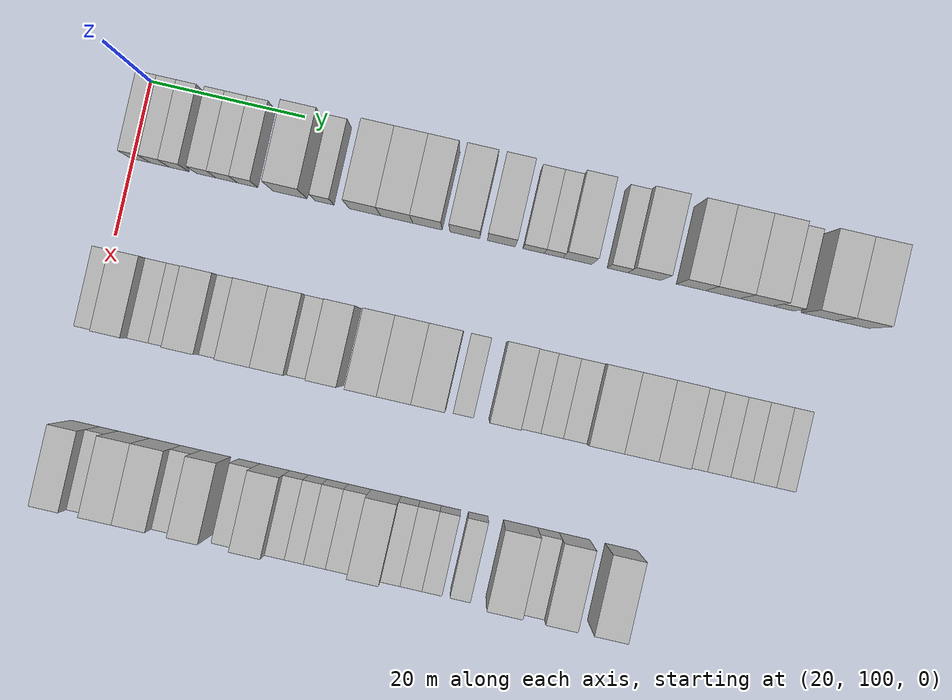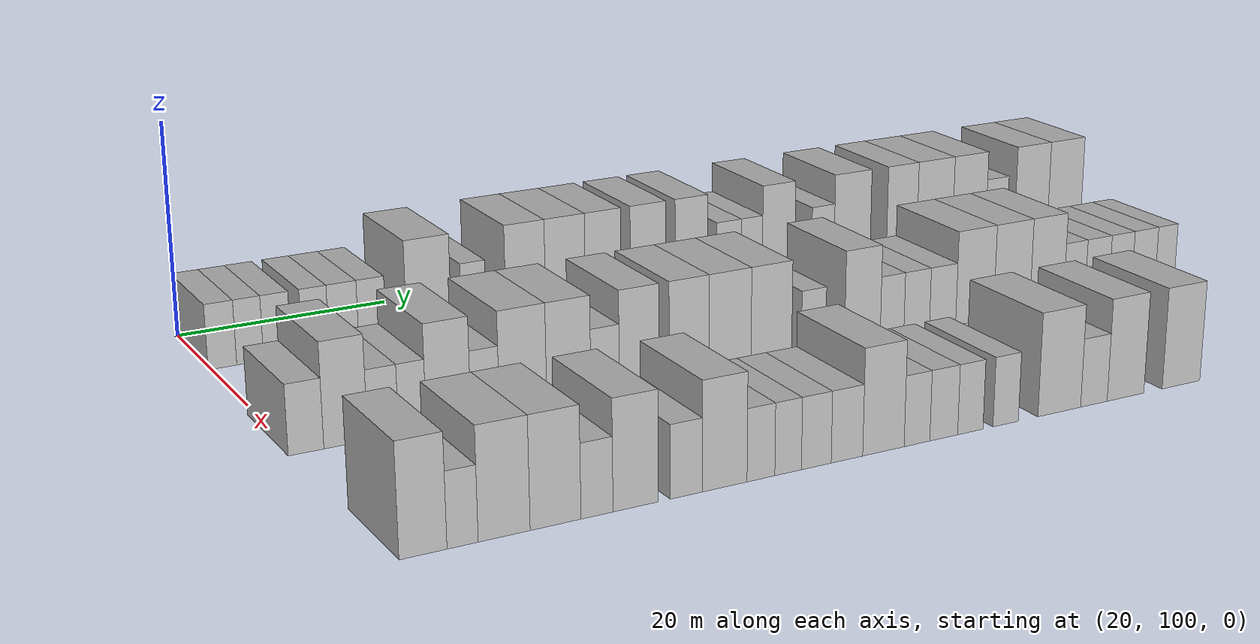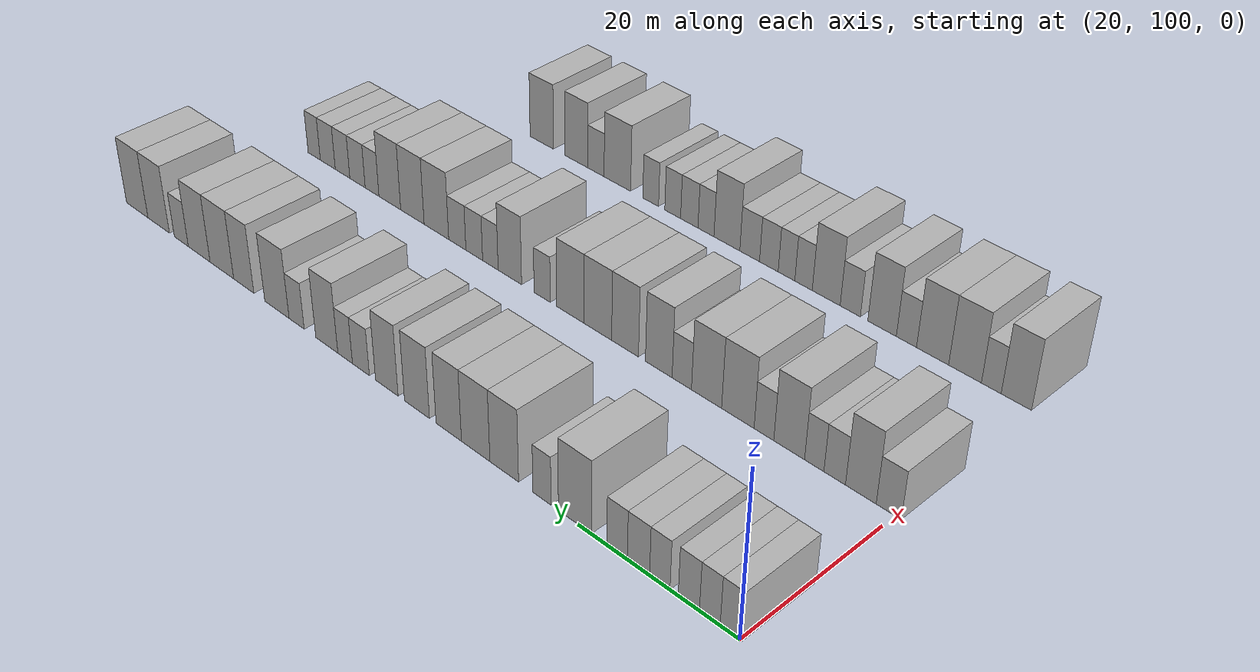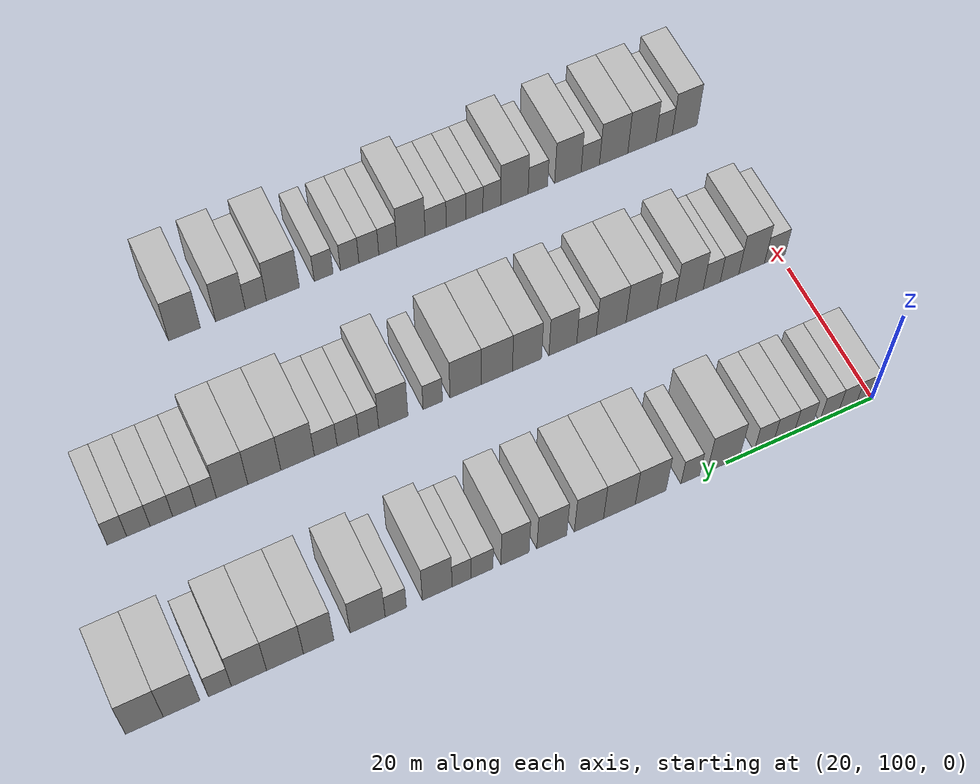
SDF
<sdf version="1.6">
 <world name="default">
  <model name="building_114">
   <static>1</static>
   <pose>25.0000 100.9912 0 0.000000 0.000000 0.000000</pose>
   <link name="link">
    <pose>0 0 3.00 0 0 0</pose>
    <collision name="collision"><geometry><box><size>10.0000 2.5690 6.0000</size></box></geometry></collision>
    <visual name="visual">
     <cast_shadows>0</cast_shadows>
     <geometry><box><size>10.0000 2.5690 6.0000</size></box></geometry>
     <material>
      <script>
       <uri>model://HANNAS_wall/materials/scripts</uri>
       <uri>model://HANNAS_wall/materials/textures</uri>
       <name>vrc/HANNAS_wall</name>
      </script>
     </material>
    </visual>
   </link>
  </model>
  <model name="building_115">
   <static>1</static>
   <pose>25.0000 103.5014 0 0.000000 0.000000 0.000000</pose>
   <link name="link">
    <pose>0 0 3.00 0 0 0</pose>
    <collision name="collision"><geometry><box><size>10.0000 2.4514 6.0000</size></box></geometry></collision>
    <visual name="visual">
     <cast_shadows>0</cast_shadows>
     <geometry><box><size>10.0000 2.4514 6.0000</size></box></geometry>
     <material>
      <script>
       <uri>model://HANNAS_wall/materials/scripts</uri>
       <uri>model://HANNAS_wall/materials/textures</uri>
       <name>vrc/HANNAS_wall</name>
      </script>
     </material>
    </visual>
   </link>
  </model>
  <model name="building_116">
   <static>1</static>
   <pose>25.0000 106.0042 0 0.000000 0.000000 0.000000</pose>
   <link name="link">
    <pose>0 0 3.00 0 0 0</pose>
    <collision name="collision"><geometry><box><size>10.0000 2.5542 6.0000</size></box></geometry></collision>
    <visual name="visual">
     <cast_shadows>0</cast_shadows>
     <geometry><box><size>10.0000 2.5542 6.0000</size></box></geometry>
     <material>
      <script>
       <uri>model://HANNAS_wall/materials/scripts</uri>
       <uri>model://HANNAS_wall/materials/textures</uri>
       <name>vrc/HANNAS_wall</name>
      </script>
     </material>
    </visual>
   </link>
  </model>
  <model name="building_117">
   <static>1</static>
   <pose>25.0000 109.5421 0 0.000000 0.000000 0.000000</pose>
   <link name="link">
    <pose>0 0 3.00 0 0 0</pose>
    <collision name="collision"><geometry><box><size>10.0000 2.5216 6.0000</size></box></geometry></collision>
    <visual name="visual">
     <cast_shadows>0</cast_shadows>
     <geometry><box><size>10.0000 2.5216 6.0000</size></box></geometry>
     <material>
      <script>
       <uri>model://HANNAS_wall/materials/scripts</uri>
       <uri>model://HANNAS_wall/materials/textures</uri>
       <name>vrc/HANNAS_wall</name>
      </script>
     </material>
    </visual>
   </link>
  </model>
  <model name="building_118">
   <static>1</static>
   <pose>25.0000 112.2065 0 0.000000 0.000000 0.000000</pose>
   <link name="link">
    <pose>0 0 3.00 0 0 0</pose>
    <collision name="collision"><geometry><box><size>10.0000 2.8073 6.0000</size></box></geometry></collision>
    <visual name="visual">
     <cast_shadows>0</cast_shadows>
     <geometry><box><size>10.0000 2.8073 6.0000</size></box></geometry>
     <material>
      <script>
       <uri>model://HANNAS_wall/materials/scripts</uri>
       <uri>model://HANNAS_wall/materials/textures</uri>
       <name>vrc/HANNAS_wall</name>
      </script>
     </material>
    </visual>
   </link>
  </model>
  <model name="building_119">
   <static>1</static>
   <pose>25.0000 114.9241 0 0.000000 0.000000 0.000000</pose>
   <link name="link">
    <pose>0 0 3.00 0 0 0</pose>
    <collision name="collision"><geometry><box><size>10.0000 2.6278 6.0000</size></box></geometry></collision>
    <visual name="visual">
     <cast_shadows>0</cast_shadows>
     <geometry><box><size>10.0000 2.6278 6.0000</size></box></geometry>
     <material>
      <script>
       <uri>model://HANNAS_wall/materials/scripts</uri>
       <uri>model://HANNAS_wall/materials/textures</uri>
       <name>vrc/HANNAS_wall</name>
      </script>
     </material>
    </visual>
   </link>
  </model>
  <model name="building_120">
   <static>1</static>
   <pose>25.0000 120.4352 0 0.000000 0.000000 0.000000</pose>
   <link name="link">
    <pose>0 0 4.50 0 0 0</pose>
    <collision name="collision"><geometry><box><size>10.0000 4.3945 9.0000</size></box></geometry></collision>
    <visual name="visual">
     <cast_shadows>0</cast_shadows>
     <geometry><box><size>10.0000 4.3945 9.0000</size></box></geometry>
     <material>
      <script>
       <uri>model://HANNAS_wall/materials/scripts</uri>
       <uri>model://HANNAS_wall/materials/textures</uri>
       <name>vrc/HANNAS_wall</name>
      </script>
     </material>
    </visual>
   </link>
  </model>
  <model name="building_121">
   <static>1</static>
   <pose>25.0000 124.8749 0 0.000000 0.000000 0.000000</pose>
   <link name="link">
    <pose>0 0 3.00 0 0 0</pose>
    <collision name="collision"><geometry><box><size>10.0000 2.4849 6.0000</size></box></geometry></collision>
    <visual name="visual">
     <cast_shadows>0</cast_shadows>
     <geometry><box><size>10.0000 2.4849 6.0000</size></box></geometry>
     <material>
      <script>
       <uri>model://HANNAS_wall/materials/scripts</uri>
       <uri>model://HANNAS_wall/materials/textures</uri>
       <name>vrc/HANNAS_wall</name>
      </script>
     </material>
    </visual>
   </link>
  </model>
  <model name="building_122">
   <static>1</static>
   <pose>25.0000 130.1571 0 0.000000 0.000000 0.000000</pose>
   <link name="link">
    <pose>0 0 4.50 0 0 0</pose>
    <collision name="collision"><geometry><box><size>10.0000 4.0796 9.0000</size></box></geometry></collision>
    <visual name="visual">
     <cast_shadows>0</cast_shadows>
     <geometry><box><size>10.0000 4.0796 9.0000</size></box></geometry>
     <material>
      <script>
       <uri>model://HANNAS_wall/materials/scripts</uri>
       <uri>model://HANNAS_wall/materials/textures</uri>
       <name>vrc/HANNAS_wall</name>
      </script>
     </material>
    </visual>
   </link>
  </model>
  <model name="building_123">
   <static>1</static>
   <pose>25.0000 134.2813 0 0.000000 0.000000 0.000000</pose>
   <link name="link">
    <pose>0 0 4.50 0 0 0</pose>
    <collision name="collision"><geometry><box><size>10.0000 4.1688 9.0000</size></box></geometry></collision>
    <visual name="visual">
     <cast_shadows>0</cast_shadows>
     <geometry><box><size>10.0000 4.1688 9.0000</size></box></geometry>
     <material>
      <script>
       <uri>model://HANNAS_wall/materials/scripts</uri>
       <uri>model://HANNAS_wall/materials/textures</uri>
       <name>vrc/HANNAS_wall</name>
      </script>
     </material>
    </visual>
   </link>
  </model>
  <model name="building_124">
   <static>1</static>
   <pose>25.0000 138.2742 0 0.000000 0.000000 0.000000</pose>
   <link name="link">
    <pose>0 0 4.50 0 0 0</pose>
    <collision name="collision"><geometry><box><size>10.0000 3.8169 9.0000</size></box></geometry></collision>
    <visual name="visual">
     <cast_shadows>0</cast_shadows>
     <geometry><box><size>10.0000 3.8169 9.0000</size></box></geometry>
     <material>
      <script>
       <uri>model://HANNAS_wall/materials/scripts</uri>
       <uri>model://HANNAS_wall/materials/textures</uri>
       <name>vrc/HANNAS_wall</name>
      </script>
     </material>
    </visual>
   </link>
  </model>
  <model name="building_125">
   <static>1</static>
   <pose>25.0000 143.1167 0 0.000000 0.000000 0.000000</pose>
   <link name="link">
    <pose>0 0 4.50 0 0 0</pose>
    <collision name="collision"><geometry><box><size>10.0000 3.8682 9.0000</size></box></geometry></collision>
    <visual name="visual">
     <cast_shadows>0</cast_shadows>
     <geometry><box><size>10.0000 3.8682 9.0000</size></box></geometry>
     <material>
      <script>
       <uri>model://HANNAS_wall/materials/scripts</uri>
       <uri>model://HANNAS_wall/materials/textures</uri>
       <name>vrc/HANNAS_wall</name>
      </script>
     </material>
    </visual>
   </link>
  </model>
  <model name="building_126">
   <static>1</static>
   <pose>25.0000 147.8548 0 0.000000 0.000000 0.000000</pose>
   <link name="link">
    <pose>0 0 4.50 0 0 0</pose>
    <collision name="collision"><geometry><box><size>10.0000 3.6080 9.0000</size></box></geometry></collision>
    <visual name="visual">
     <cast_shadows>0</cast_shadows>
     <geometry><box><size>10.0000 3.6080 9.0000</size></box></geometry>
     <material>
      <script>
       <uri>model://HANNAS_wall/materials/scripts</uri>
       <uri>model://HANNAS_wall/materials/textures</uri>
       <name>vrc/HANNAS_wall</name>
      </script>
     </material>
    </visual>
   </link>
  </model>
  <model name="building_127">
   <static>1</static>
   <pose>25.0000 152.0460 0 0.000000 0.000000 0.000000</pose>
   <link name="link">
    <pose>0 0 3.00 0 0 0</pose>
    <collision name="collision"><geometry><box><size>10.0000 2.7743 6.0000</size></box></geometry></collision>
    <visual name="visual">
     <cast_shadows>0</cast_shadows>
     <geometry><box><size>10.0000 2.7743 6.0000</size></box></geometry>
     <material>
      <script>
       <uri>model://HANNAS_wall/materials/scripts</uri>
       <uri>model://HANNAS_wall/materials/textures</uri>
       <name>vrc/HANNAS_wall</name>
      </script>
     </material>
    </visual>
   </link>
  </model>
  <model name="building_128">
   <static>1</static>
   <pose>25.0000 154.6490 0 0.000000 0.000000 0.000000</pose>
   <link name="link">
    <pose>0 0 3.00 0 0 0</pose>
    <collision name="collision"><geometry><box><size>10.0000 2.4317 6.0000</size></box></geometry></collision>
    <visual name="visual">
     <cast_shadows>0</cast_shadows>
     <geometry><box><size>10.0000 2.4317 6.0000</size></box></geometry>
     <material>
      <script>
       <uri>model://HANNAS_wall/materials/scripts</uri>
       <uri>model://HANNAS_wall/materials/textures</uri>
       <name>vrc/HANNAS_wall</name>
      </script>
     </material>
    </visual>
   </link>
  </model>
  <model name="building_129">
   <static>1</static>
   <pose>25.0000 157.7374 0 0.000000 0.000000 0.000000</pose>
   <link name="link">
    <pose>0 0 4.50 0 0 0</pose>
    <collision name="collision"><geometry><box><size>10.0000 3.7451 9.0000</size></box></geometry></collision>
    <visual name="visual">
     <cast_shadows>0</cast_shadows>
     <geometry><box><size>10.0000 3.7451 9.0000</size></box></geometry>
     <material>
      <script>
       <uri>model://HANNAS_wall/materials/scripts</uri>
       <uri>model://HANNAS_wall/materials/textures</uri>
       <name>vrc/HANNAS_wall</name>
      </script>
     </material>
    </visual>
   </link>
  </model>
  <model name="building_130">
   <static>1</static>
   <pose>25.0000 162.9333 0 0.000000 0.000000 0.000000</pose>
   <link name="link">
    <pose>0 0 3.00 0 0 0</pose>
    <collision name="collision"><geometry><box><size>10.0000 2.6468 6.0000</size></box></geometry></collision>
    <visual name="visual">
     <cast_shadows>0</cast_shadows>
     <geometry><box><size>10.0000 2.6468 6.0000</size></box></geometry>
     <material>
      <script>
       <uri>model://HANNAS_wall/materials/scripts</uri>
       <uri>model://HANNAS_wall/materials/textures</uri>
       <name>vrc/HANNAS_wall</name>
      </script>
     </material>
    </visual>
   </link>
  </model>
  <model name="building_131">
   <static>1</static>
   <pose>25.0000 166.4300 0 0.000000 0.000000 0.000000</pose>
   <link name="link">
    <pose>0 0 4.50 0 0 0</pose>
    <collision name="collision"><geometry><box><size>10.0000 4.3466 9.0000</size></box></geometry></collision>
    <visual name="visual">
     <cast_shadows>0</cast_shadows>
     <geometry><box><size>10.0000 4.3466 9.0000</size></box></geometry>
     <material>
      <script>
       <uri>model://HANNAS_wall/materials/scripts</uri>
       <uri>model://HANNAS_wall/materials/textures</uri>
       <name>vrc/HANNAS_wall</name>
      </script>
     </material>
    </visual>
   </link>
  </model>
  <model name="building_132">
   <static>1</static>
   <pose>25.0000 172.4706 0 0.000000 0.000000 0.000000</pose>
   <link name="link">
    <pose>0 0 4.50 0 0 0</pose>
    <collision name="collision"><geometry><box><size>10.0000 3.7345 9.0000</size></box></geometry></collision>
    <visual name="visual">
     <cast_shadows>0</cast_shadows>
     <geometry><box><size>10.0000 3.7345 9.0000</size></box></geometry>
     <material>
      <script>
       <uri>model://HANNAS_wall/materials/scripts</uri>
       <uri>model://HANNAS_wall/materials/textures</uri>
       <name>vrc/HANNAS_wall</name>
      </script>
     </material>
    </visual>
   </link>
  </model>
  <model name="building_133">
   <static>1</static>
   <pose>25.0000 176.5784 0 0.000000 0.000000 0.000000</pose>
   <link name="link">
    <pose>0 0 4.50 0 0 0</pose>
    <collision name="collision"><geometry><box><size>10.0000 4.4811 9.0000</size></box></geometry></collision>
    <visual name="visual">
     <cast_shadows>0</cast_shadows>
     <geometry><box><size>10.0000 4.4811 9.0000</size></box></geometry>
     <material>
      <script>
       <uri>model://HANNAS_wall/materials/scripts</uri>
       <uri>model://HANNAS_wall/materials/textures</uri>
       <name>vrc/HANNAS_wall</name>
      </script>
     </material>
    </visual>
   </link>
  </model>
  <model name="building_134">
   <static>1</static>
   <pose>25.0000 180.9417 0 0.000000 0.000000 0.000000</pose>
   <link name="link">
    <pose>0 0 4.50 0 0 0</pose>
    <collision name="collision"><geometry><box><size>10.0000 4.2455 9.0000</size></box></geometry></collision>
    <visual name="visual">
     <cast_shadows>0</cast_shadows>
     <geometry><box><size>10.0000 4.2455 9.0000</size></box></geometry>
     <material>
      <script>
       <uri>model://HANNAS_wall/materials/scripts</uri>
       <uri>model://HANNAS_wall/materials/textures</uri>
       <name>vrc/HANNAS_wall</name>
      </script>
     </material>
    </visual>
   </link>
  </model>
  <model name="building_135">
   <static>1</static>
   <pose>25.0000 184.4481 0 0.000000 0.000000 0.000000</pose>
   <link name="link">
    <pose>0 0 3.00 0 0 0</pose>
    <collision name="collision"><geometry><box><size>10.0000 2.7674 6.0000</size></box></geometry></collision>
    <visual name="visual">
     <cast_shadows>0</cast_shadows>
     <geometry><box><size>10.0000 2.7674 6.0000</size></box></geometry>
     <material>
      <script>
       <uri>model://HANNAS_wall/materials/scripts</uri>
       <uri>model://HANNAS_wall/materials/textures</uri>
       <name>vrc/HANNAS_wall</name>
      </script>
     </material>
    </visual>
   </link>
  </model>
  <model name="building_136">
   <static>1</static>
   <pose>25.0000 189.0127 0 0.000000 0.000000 0.000000</pose>
   <link name="link">
    <pose>0 0 4.50 0 0 0</pose>
    <collision name="collision"><geometry><box><size>10.0000 4.3617 9.0000</size></box></geometry></collision>
    <visual name="visual">
     <cast_shadows>0</cast_shadows>
     <geometry><box><size>10.0000 4.3617 9.0000</size></box></geometry>
     <material>
      <script>
       <uri>model://HANNAS_wall/materials/scripts</uri>
       <uri>model://HANNAS_wall/materials/textures</uri>
       <name>vrc/HANNAS_wall</name>
      </script>
     </material>
    </visual>
   </link>
  </model>
  <model name="building_137">
   <static>1</static>
   <pose>25.0000 193.4229 0 0.000000 0.000000 0.000000</pose>
   <link name="link">
    <pose>0 0 4.50 0 0 0</pose>
    <collision name="collision"><geometry><box><size>10.0000 4.4588 9.0000</size></box></geometry></collision>
    <visual name="visual">
     <cast_shadows>0</cast_shadows>
     <geometry><box><size>10.0000 4.4588 9.0000</size></box></geometry>
     <material>
      <script>
       <uri>model://HANNAS_wall/materials/scripts</uri>
       <uri>model://HANNAS_wall/materials/textures</uri>
       <name>vrc/HANNAS_wall</name>
      </script>
     </material>
    </visual>
   </link>
  </model>
  <model name="building_304">
   <static>1</static>
   <pose>47.0000 100.8034 0 0.000000 0.000000 0.000000</pose>
   <link name="link">
    <pose>0 0 3.00 0 0 0</pose>
    <collision name="collision"><geometry><box><size>10.0000 2.9554 6.0000</size></box></geometry></collision>
    <visual name="visual">
     <cast_shadows>0</cast_shadows>
     <geometry><box><size>10.0000 2.9554 6.0000</size></box></geometry>
     <material>
      <script>
       <uri>model://HANNAS_wall/materials/scripts</uri>
       <uri>model://HANNAS_wall/materials/textures</uri>
       <name>vrc/HANNAS_wall</name>
      </script>
     </material>
    </visual>
   </link>
  </model>
  <model name="building_305">
   <static>1</static>
   <pose>47.0000 104.1253 0 0.000000 0.000000 0.000000</pose>
   <link name="link">
    <pose>0 0 4.50 0 0 0</pose>
    <collision name="collision"><geometry><box><size>10.0000 3.6886 9.0000</size></box></geometry></collision>
    <visual name="visual">
     <cast_shadows>0</cast_shadows>
     <geometry><box><size>10.0000 3.6886 9.0000</size></box></geometry>
     <material>
      <script>
       <uri>model://HANNAS_wall/materials/scripts</uri>
       <uri>model://HANNAS_wall/materials/textures</uri>
       <name>vrc/HANNAS_wall</name>
      </script>
     </material>
    </visual>
   </link>
  </model>
  <model name="building_306">
   <static>1</static>
   <pose>47.0000 107.2910 0 0.000000 0.000000 0.000000</pose>
   <link name="link">
    <pose>0 0 3.00 0 0 0</pose>
    <collision name="collision"><geometry><box><size>10.0000 2.6428 6.0000</size></box></geometry></collision>
    <visual name="visual">
     <cast_shadows>0</cast_shadows>
     <geometry><box><size>10.0000 2.6428 6.0000</size></box></geometry>
     <material>
      <script>
       <uri>model://HANNAS_wall/materials/scripts</uri>
       <uri>model://HANNAS_wall/materials/textures</uri>
       <name>vrc/HANNAS_wall</name>
      </script>
     </material>
    </visual>
   </link>
  </model>
  <model name="building_307">
   <static>1</static>
   <pose>47.0000 109.8154 0 0.000000 0.000000 0.000000</pose>
   <link name="link">
    <pose>0 0 3.00 0 0 0</pose>
    <collision name="collision"><geometry><box><size>10.0000 2.4059 6.0000</size></box></geometry></collision>
    <visual name="visual">
     <cast_shadows>0</cast_shadows>
     <geometry><box><size>10.0000 2.4059 6.0000</size></box></geometry>
     <material>
      <script>
       <uri>model://HANNAS_wall/materials/scripts</uri>
       <uri>model://HANNAS_wall/materials/textures</uri>
       <name>vrc/HANNAS_wall</name>
      </script>
     </material>
    </visual>
   </link>
  </model>
  <model name="building_308">
   <static>1</static>
   <pose>47.0000 112.9786 0 0.000000 0.000000 0.000000</pose>
   <link name="link">
    <pose>0 0 4.50 0 0 0</pose>
    <collision name="collision"><geometry><box><size>10.0000 3.9204 9.0000</size></box></geometry></collision>
    <visual name="visual">
     <cast_shadows>0</cast_shadows>
     <geometry><box><size>10.0000 3.9204 9.0000</size></box></geometry>
     <material>
      <script>
       <uri>model://HANNAS_wall/materials/scripts</uri>
       <uri>model://HANNAS_wall/materials/textures</uri>
       <name>vrc/HANNAS_wall</name>
      </script>
     </material>
    </visual>
   </link>
  </model>
  <model name="building_309">
   <static>1</static>
   <pose>47.0000 116.2169 0 0.000000 0.000000 0.000000</pose>
   <link name="link">
    <pose>0 0 3.00 0 0 0</pose>
    <collision name="collision"><geometry><box><size>10.0000 2.5563 6.0000</size></box></geometry></collision>
    <visual name="visual">
     <cast_shadows>0</cast_shadows>
     <geometry><box><size>10.0000 2.5563 6.0000</size></box></geometry>
     <material>
      <script>
       <uri>model://HANNAS_wall/materials/scripts</uri>
       <uri>model://HANNAS_wall/materials/textures</uri>
       <name>vrc/HANNAS_wall</name>
      </script>
     </material>
    </visual>
   </link>
  </model>
  <model name="building_310">
   <static>1</static>
   <pose>47.0000 119.6557 0 0.000000 0.000000 0.000000</pose>
   <link name="link">
    <pose>0 0 4.50 0 0 0</pose>
    <collision name="collision"><geometry><box><size>10.0000 4.3212 9.0000</size></box></geometry></collision>
    <visual name="visual">
     <cast_shadows>0</cast_shadows>
     <geometry><box><size>10.0000 4.3212 9.0000</size></box></geometry>
     <material>
      <script>
       <uri>model://HANNAS_wall/materials/scripts</uri>
       <uri>model://HANNAS_wall/materials/textures</uri>
       <name>vrc/HANNAS_wall</name>
      </script>
     </material>
    </visual>
   </link>
  </model>
  <model name="building_311">
   <static>1</static>
   <pose>47.0000 123.8716 0 0.000000 0.000000 0.000000</pose>
   <link name="link">
    <pose>0 0 4.50 0 0 0</pose>
    <collision name="collision"><geometry><box><size>10.0000 4.1107 9.0000</size></box></geometry></collision>
    <visual name="visual">
     <cast_shadows>0</cast_shadows>
     <geometry><box><size>10.0000 4.1107 9.0000</size></box></geometry>
     <material>
      <script>
       <uri>model://HANNAS_wall/materials/scripts</uri>
       <uri>model://HANNAS_wall/materials/textures</uri>
       <name>vrc/HANNAS_wall</name>
      </script>
     </material>
    </visual>
   </link>
  </model>
  <model name="building_312">
   <static>1</static>
   <pose>47.0000 127.2758 0 0.000000 0.000000 0.000000</pose>
   <link name="link">
    <pose>0 0 3.00 0 0 0</pose>
    <collision name="collision"><geometry><box><size>10.0000 2.6977 6.0000</size></box></geometry></collision>
    <visual name="visual">
     <cast_shadows>0</cast_shadows>
     <geometry><box><size>10.0000 2.6977 6.0000</size></box></geometry>
     <material>
      <script>
       <uri>model://HANNAS_wall/materials/scripts</uri>
       <uri>model://HANNAS_wall/materials/textures</uri>
       <name>vrc/HANNAS_wall</name>
      </script>
     </material>
    </visual>
   </link>
  </model>
  <model name="building_313">
   <static>1</static>
   <pose>47.0000 130.5267 0 0.000000 0.000000 0.000000</pose>
   <link name="link">
    <pose>0 0 4.50 0 0 0</pose>
    <collision name="collision"><geometry><box><size>10.0000 3.8042 9.0000</size></box></geometry></collision>
    <visual name="visual">
     <cast_shadows>0</cast_shadows>
     <geometry><box><size>10.0000 3.8042 9.0000</size></box></geometry>
     <material>
      <script>
       <uri>model://HANNAS_wall/materials/scripts</uri>
       <uri>model://HANNAS_wall/materials/textures</uri>
       <name>vrc/HANNAS_wall</name>
      </script>
     </material>
    </visual>
   </link>
  </model>
  <model name="building_314">
   <static>1</static>
   <pose>47.0000 135.3966 0 0.000000 0.000000 0.000000</pose>
   <link name="link">
    <pose>0 0 4.50 0 0 0</pose>
    <collision name="collision"><geometry><box><size>10.0000 3.9356 9.0000</size></box></geometry></collision>
    <visual name="visual">
     <cast_shadows>0</cast_shadows>
     <geometry><box><size>10.0000 3.9356 9.0000</size></box></geometry>
     <material>
      <script>
       <uri>model://HANNAS_wall/materials/scripts</uri>
       <uri>model://HANNAS_wall/materials/textures</uri>
       <name>vrc/HANNAS_wall</name>
      </script>
     </material>
    </visual>
   </link>
  </model>
  <model name="building_315">
   <static>1</static>
   <pose>47.0000 139.4670 0 0.000000 0.000000 0.000000</pose>
   <link name="link">
    <pose>0 0 4.50 0 0 0</pose>
    <collision name="collision"><geometry><box><size>10.0000 4.2050 9.0000</size></box></geometry></collision>
    <visual name="visual">
     <cast_shadows>0</cast_shadows>
     <geometry><box><size>10.0000 4.2050 9.0000</size></box></geometry>
     <material>
      <script>
       <uri>model://HANNAS_wall/materials/scripts</uri>
       <uri>model://HANNAS_wall/materials/textures</uri>
       <name>vrc/HANNAS_wall</name>
      </script>
     </material>
    </visual>
   </link>
  </model>
  <model name="building_316">
   <static>1</static>
   <pose>47.0000 143.6495 0 0.000000 0.000000 0.000000</pose>
   <link name="link">
    <pose>0 0 4.50 0 0 0</pose>
    <collision name="collision"><geometry><box><size>10.0000 4.1600 9.0000</size></box></geometry></collision>
    <visual name="visual">
     <cast_shadows>0</cast_shadows>
     <geometry><box><size>10.0000 4.1600 9.0000</size></box></geometry>
     <material>
      <script>
       <uri>model://HANNAS_wall/materials/scripts</uri>
       <uri>model://HANNAS_wall/materials/textures</uri>
       <name>vrc/HANNAS_wall</name>
      </script>
     </material>
    </visual>
   </link>
  </model>
  <model name="building_317">
   <static>1</static>
   <pose>47.0000 148.0072 0 0.000000 0.000000 0.000000</pose>
   <link name="link">
    <pose>0 0 3.00 0 0 0</pose>
    <collision name="collision"><geometry><box><size>10.0000 2.5553 6.0000</size></box></geometry></collision>
    <visual name="visual">
     <cast_shadows>0</cast_shadows>
     <geometry><box><size>10.0000 2.5553 6.0000</size></box></geometry>
     <material>
      <script>
       <uri>model://HANNAS_wall/materials/scripts</uri>
       <uri>model://HANNAS_wall/materials/textures</uri>
       <name>vrc/HANNAS_wall</name>
      </script>
     </material>
    </visual>
   </link>
  </model>
  <model name="building_318">
   <static>1</static>
   <pose>47.0000 153.2004 0 0.000000 0.000000 0.000000</pose>
   <link name="link">
    <pose>0 0 4.50 0 0 0</pose>
    <collision name="collision"><geometry><box><size>10.0000 3.8312 9.0000</size></box></geometry></collision>
    <visual name="visual">
     <cast_shadows>0</cast_shadows>
     <geometry><box><size>10.0000 3.8312 9.0000</size></box></geometry>
     <material>
      <script>
       <uri>model://HANNAS_wall/materials/scripts</uri>
       <uri>model://HANNAS_wall/materials/textures</uri>
       <name>vrc/HANNAS_wall</name>
      </script>
     </material>
    </visual>
   </link>
  </model>
  <model name="building_319">
   <static>1</static>
   <pose>47.0000 156.4069 0 0.000000 0.000000 0.000000</pose>
   <link name="link">
    <pose>0 0 3.00 0 0 0</pose>
    <collision name="collision"><geometry><box><size>10.0000 2.5818 6.0000</size></box></geometry></collision>
    <visual name="visual">
     <cast_shadows>0</cast_shadows>
     <geometry><box><size>10.0000 2.5818 6.0000</size></box></geometry>
     <material>
      <script>
       <uri>model://HANNAS_wall/materials/scripts</uri>
       <uri>model://HANNAS_wall/materials/textures</uri>
       <name>vrc/HANNAS_wall</name>
      </script>
     </material>
    </visual>
   </link>
  </model>
  <model name="building_320">
   <static>1</static>
   <pose>47.0000 159.1098 0 0.000000 0.000000 0.000000</pose>
   <link name="link">
    <pose>0 0 3.00 0 0 0</pose>
    <collision name="collision"><geometry><box><size>10.0000 2.8239 6.0000</size></box></geometry></collision>
    <visual name="visual">
     <cast_shadows>0</cast_shadows>
     <geometry><box><size>10.0000 2.8239 6.0000</size></box></geometry>
     <material>
      <script>
       <uri>model://HANNAS_wall/materials/scripts</uri>
       <uri>model://HANNAS_wall/materials/textures</uri>
       <name>vrc/HANNAS_wall</name>
      </script>
     </material>
    </visual>
   </link>
  </model>
  <model name="building_321">
   <static>1</static>
   <pose>47.0000 161.9942 0 0.000000 0.000000 0.000000</pose>
   <link name="link">
    <pose>0 0 3.00 0 0 0</pose>
    <collision name="collision"><geometry><box><size>10.0000 2.9449 6.0000</size></box></geometry></collision>
    <visual name="visual">
     <cast_shadows>0</cast_shadows>
     <geometry><box><size>10.0000 2.9449 6.0000</size></box></geometry>
     <material>
      <script>
       <uri>model://HANNAS_wall/materials/scripts</uri>
       <uri>model://HANNAS_wall/materials/textures</uri>
       <name>vrc/HANNAS_wall</name>
      </script>
     </material>
    </visual>
   </link>
  </model>
  <model name="building_322">
   <static>1</static>
   <pose>47.0000 165.6176 0 0.000000 0.000000 0.000000</pose>
   <link name="link">
    <pose>0 0 4.50 0 0 0</pose>
    <collision name="collision"><geometry><box><size>10.0000 4.3020 9.0000</size></box></geometry></collision>
    <visual name="visual">
     <cast_shadows>0</cast_shadows>
     <geometry><box><size>10.0000 4.3020 9.0000</size></box></geometry>
     <material>
      <script>
       <uri>model://HANNAS_wall/materials/scripts</uri>
       <uri>model://HANNAS_wall/materials/textures</uri>
       <name>vrc/HANNAS_wall</name>
      </script>
     </material>
    </visual>
   </link>
  </model>
  <model name="building_323">
   <static>1</static>
   <pose>47.0000 169.8721 0 0.000000 0.000000 0.000000</pose>
   <link name="link">
    <pose>0 0 4.50 0 0 0</pose>
    <collision name="collision"><geometry><box><size>10.0000 4.2071 9.0000</size></box></geometry></collision>
    <visual name="visual">
     <cast_shadows>0</cast_shadows>
     <geometry><box><size>10.0000 4.2071 9.0000</size></box></geometry>
     <material>
      <script>
       <uri>model://HANNAS_wall/materials/scripts</uri>
       <uri>model://HANNAS_wall/materials/textures</uri>
       <name>vrc/HANNAS_wall</name>
      </script>
     </material>
    </visual>
   </link>
  </model>
  <model name="building_324">
   <static>1</static>
   <pose>47.0000 173.9677 0 0.000000 0.000000 0.000000</pose>
   <link name="link">
    <pose>0 0 4.50 0 0 0</pose>
    <collision name="collision"><geometry><box><size>10.0000 3.9841 9.0000</size></box></geometry></collision>
    <visual name="visual">
     <cast_shadows>0</cast_shadows>
     <geometry><box><size>10.0000 3.9841 9.0000</size></box></geometry>
     <material>
      <script>
       <uri>model://HANNAS_wall/materials/scripts</uri>
       <uri>model://HANNAS_wall/materials/textures</uri>
       <name>vrc/HANNAS_wall</name>
      </script>
     </material>
    </visual>
   </link>
  </model>
  <model name="building_325">
   <static>1</static>
   <pose>47.0000 177.2437 0 0.000000 0.000000 0.000000</pose>
   <link name="link">
    <pose>0 0 3.00 0 0 0</pose>
    <collision name="collision"><geometry><box><size>10.0000 2.5679 6.0000</size></box></geometry></collision>
    <visual name="visual">
     <cast_shadows>0</cast_shadows>
     <geometry><box><size>10.0000 2.5679 6.0000</size></box></geometry>
     <material>
      <script>
       <uri>model://HANNAS_wall/materials/scripts</uri>
       <uri>model://HANNAS_wall/materials/textures</uri>
       <name>vrc/HANNAS_wall</name>
      </script>
     </material>
    </visual>
   </link>
  </model>
  <model name="building_326">
   <static>1</static>
   <pose>47.0000 179.9818 0 0.000000 0.000000 0.000000</pose>
   <link name="link">
    <pose>0 0 3.00 0 0 0</pose>
    <collision name="collision"><geometry><box><size>10.0000 2.9085 6.0000</size></box></geometry></collision>
    <visual name="visual">
     <cast_shadows>0</cast_shadows>
     <geometry><box><size>10.0000 2.9085 6.0000</size></box></geometry>
     <material>
      <script>
       <uri>model://HANNAS_wall/materials/scripts</uri>
       <uri>model://HANNAS_wall/materials/textures</uri>
       <name>vrc/HANNAS_wall</name>
      </script>
     </material>
    </visual>
   </link>
  </model>
  <model name="building_327">
   <static>1</static>
   <pose>47.0000 182.8384 0 0.000000 0.000000 0.000000</pose>
   <link name="link">
    <pose>0 0 3.00 0 0 0</pose>
    <collision name="collision"><geometry><box><size>10.0000 2.8046 6.0000</size></box></geometry></collision>
    <visual name="visual">
     <cast_shadows>0</cast_shadows>
     <geometry><box><size>10.0000 2.8046 6.0000</size></box></geometry>
     <material>
      <script>
       <uri>model://HANNAS_wall/materials/scripts</uri>
       <uri>model://HANNAS_wall/materials/textures</uri>
       <name>vrc/HANNAS_wall</name>
      </script>
     </material>
    </visual>
   </link>
  </model>
  <model name="building_328">
   <static>1</static>
   <pose>47.0000 185.6945 0 0.000000 0.000000 0.000000</pose>
   <link name="link">
    <pose>0 0 3.00 0 0 0</pose>
    <collision name="collision"><geometry><box><size>10.0000 2.9077 6.0000</size></box></geometry></collision>
    <visual name="visual">
     <cast_shadows>0</cast_shadows>
     <geometry><box><size>10.0000 2.9077 6.0000</size></box></geometry>
     <material>
      <script>
       <uri>model://HANNAS_wall/materials/scripts</uri>
       <uri>model://HANNAS_wall/materials/textures</uri>
       <name>vrc/HANNAS_wall</name>
      </script>
     </material>
    </visual>
   </link>
  </model>
  <model name="building_329">
   <static>1</static>
   <pose>47.0000 188.3561 0 0.000000 0.000000 0.000000</pose>
   <link name="link">
    <pose>0 0 3.00 0 0 0</pose>
    <collision name="collision"><geometry><box><size>10.0000 2.4154 6.0000</size></box></geometry></collision>
    <visual name="visual">
     <cast_shadows>0</cast_shadows>
     <geometry><box><size>10.0000 2.4154 6.0000</size></box></geometry>
     <material>
      <script>
       <uri>model://HANNAS_wall/materials/scripts</uri>
       <uri>model://HANNAS_wall/materials/textures</uri>
       <name>vrc/HANNAS_wall</name>
      </script>
     </material>
    </visual>
   </link>
  </model>
  <model name="building_499">
   <static>1</static>
   <pose>69.0000 101.6382 0 0.000000 0.000000 0.000000</pose>
   <link name="link">
    <pose>0 0 4.50 0 0 0</pose>
    <collision name="collision"><geometry><box><size>10.0000 3.6570 9.0000</size></box></geometry></collision>
    <visual name="visual">
     <cast_shadows>0</cast_shadows>
     <geometry><box><size>10.0000 3.6570 9.0000</size></box></geometry>
     <material>
      <script>
       <uri>model://HANNAS_wall/materials/scripts</uri>
       <uri>model://HANNAS_wall/materials/textures</uri>
       <name>vrc/HANNAS_wall</name>
      </script>
     </material>
    </visual>
   </link>
  </model>
  <model name="building_500">
   <static>1</static>
   <pose>69.0000 104.6734 0 0.000000 0.000000 0.000000</pose>
   <link name="link">
    <pose>0 0 3.00 0 0 0</pose>
    <collision name="collision"><geometry><box><size>10.0000 2.4134 6.0000</size></box></geometry></collision>
    <visual name="visual">
     <cast_shadows>0</cast_shadows>
     <geometry><box><size>10.0000 2.4134 6.0000</size></box></geometry>
     <material>
      <script>
       <uri>model://HANNAS_wall/materials/scripts</uri>
       <uri>model://HANNAS_wall/materials/textures</uri>
       <name>vrc/HANNAS_wall</name>
      </script>
     </material>
    </visual>
   </link>
  </model>
  <model name="building_501">
   <static>1</static>
   <pose>69.0000 107.9299 0 0.000000 0.000000 0.000000</pose>
   <link name="link">
    <pose>0 0 4.50 0 0 0</pose>
    <collision name="collision"><geometry><box><size>10.0000 4.0996 9.0000</size></box></geometry></collision>
    <visual name="visual">
     <cast_shadows>0</cast_shadows>
     <geometry><box><size>10.0000 4.0996 9.0000</size></box></geometry>
     <material>
      <script>
       <uri>model://HANNAS_wall/materials/scripts</uri>
       <uri>model://HANNAS_wall/materials/textures</uri>
       <name>vrc/HANNAS_wall</name>
      </script>
     </material>
    </visual>
   </link>
  </model>
  <model name="building_502">
   <static>1</static>
   <pose>69.0000 112.0343 0 0.000000 0.000000 0.000000</pose>
   <link name="link">
    <pose>0 0 4.50 0 0 0</pose>
    <collision name="collision"><geometry><box><size>10.0000 4.1093 9.0000</size></box></geometry></collision>
    <visual name="visual">
     <cast_shadows>0</cast_shadows>
     <geometry><box><size>10.0000 4.1093 9.0000</size></box></geometry>
     <material>
      <script>
       <uri>model://HANNAS_wall/materials/scripts</uri>
       <uri>model://HANNAS_wall/materials/textures</uri>
       <name>vrc/HANNAS_wall</name>
      </script>
     </material>
    </visual>
   </link>
  </model>
  <model name="building_503">
   <static>1</static>
   <pose>69.0000 115.4100 0 0.000000 0.000000 0.000000</pose>
   <link name="link">
    <pose>0 0 3.00 0 0 0</pose>
    <collision name="collision"><geometry><box><size>10.0000 2.6420 6.0000</size></box></geometry></collision>
    <visual name="visual">
     <cast_shadows>0</cast_shadows>
     <geometry><box><size>10.0000 2.6420 6.0000</size></box></geometry>
     <material>
      <script>
       <uri>model://HANNAS_wall/materials/scripts</uri>
       <uri>model://HANNAS_wall/materials/textures</uri>
       <name>vrc/HANNAS_wall</name>
      </script>
     </material>
    </visual>
   </link>
  </model>
  <model name="building_504">
   <static>1</static>
   <pose>69.0000 118.6356 0 0.000000 0.000000 0.000000</pose>
   <link name="link">
    <pose>0 0 4.50 0 0 0</pose>
    <collision name="collision"><geometry><box><size>10.0000 3.8091 9.0000</size></box></geometry></collision>
    <visual name="visual">
     <cast_shadows>0</cast_shadows>
     <geometry><box><size>10.0000 3.8091 9.0000</size></box></geometry>
     <material>
      <script>
       <uri>model://HANNAS_wall/materials/scripts</uri>
       <uri>model://HANNAS_wall/materials/textures</uri>
       <name>vrc/HANNAS_wall</name>
      </script>
     </material>
    </visual>
   </link>
  </model>
  <model name="building_505">
   <static>1</static>
   <pose>69.0000 122.9273 0 0.000000 0.000000 0.000000</pose>
   <link name="link">
    <pose>0 0 3.00 0 0 0</pose>
    <collision name="collision"><geometry><box><size>10.0000 2.7743 6.0000</size></box></geometry></collision>
    <visual name="visual">
     <cast_shadows>0</cast_shadows>
     <geometry><box><size>10.0000 2.7743 6.0000</size></box></geometry>
     <material>
      <script>
       <uri>model://HANNAS_wall/materials/scripts</uri>
       <uri>model://HANNAS_wall/materials/textures</uri>
       <name>vrc/HANNAS_wall</name>
      </script>
     </material>
    </visual>
   </link>
  </model>
  <model name="building_506">
   <static>1</static>
   <pose>69.0000 126.2650 0 0.000000 0.000000 0.000000</pose>
   <link name="link">
    <pose>0 0 4.50 0 0 0</pose>
    <collision name="collision"><geometry><box><size>10.0000 3.9011 9.0000</size></box></geometry></collision>
    <visual name="visual">
     <cast_shadows>0</cast_shadows>
     <geometry><box><size>10.0000 3.9011 9.0000</size></box></geometry>
     <material>
      <script>
       <uri>model://HANNAS_wall/materials/scripts</uri>
       <uri>model://HANNAS_wall/materials/textures</uri>
       <name>vrc/HANNAS_wall</name>
      </script>
     </material>
    </visual>
   </link>
  </model>
  <model name="building_507">
   <static>1</static>
   <pose>69.0000 129.4544 0 0.000000 0.000000 0.000000</pose>
   <link name="link">
    <pose>0 0 3.00 0 0 0</pose>
    <collision name="collision"><geometry><box><size>10.0000 2.4777 6.0000</size></box></geometry></collision>
    <visual name="visual">
     <cast_shadows>0</cast_shadows>
     <geometry><box><size>10.0000 2.4777 6.0000</size></box></geometry>
     <material>
      <script>
       <uri>model://HANNAS_wall/materials/scripts</uri>
       <uri>model://HANNAS_wall/materials/textures</uri>
       <name>vrc/HANNAS_wall</name>
      </script>
     </material>
    </visual>
   </link>
  </model>
  <model name="building_508">
   <static>1</static>
   <pose>69.0000 131.8938 0 0.000000 0.000000 0.000000</pose>
   <link name="link">
    <pose>0 0 3.00 0 0 0</pose>
    <collision name="collision"><geometry><box><size>10.0000 2.4010 6.0000</size></box></geometry></collision>
    <visual name="visual">
     <cast_shadows>0</cast_shadows>
     <geometry><box><size>10.0000 2.4010 6.0000</size></box></geometry>
     <material>
      <script>
       <uri>model://HANNAS_wall/materials/scripts</uri>
       <uri>model://HANNAS_wall/materials/textures</uri>
       <name>vrc/HANNAS_wall</name>
      </script>
     </material>
    </visual>
   </link>
  </model>
  <model name="building_509">
   <static>1</static>
   <pose>69.0000 134.4599 0 0.000000 0.000000 0.000000</pose>
   <link name="link">
    <pose>0 0 3.00 0 0 0</pose>
    <collision name="collision"><geometry><box><size>10.0000 2.7312 6.0000</size></box></geometry></collision>
    <visual name="visual">
     <cast_shadows>0</cast_shadows>
     <geometry><box><size>10.0000 2.7312 6.0000</size></box></geometry>
     <material>
      <script>
       <uri>model://HANNAS_wall/materials/scripts</uri>
       <uri>model://HANNAS_wall/materials/textures</uri>
       <name>vrc/HANNAS_wall</name>
      </script>
     </material>
    </visual>
   </link>
  </model>
  <model name="building_510">
   <static>1</static>
   <pose>69.0000 137.2923 0 0.000000 0.000000 0.000000</pose>
   <link name="link">
    <pose>0 0 3.00 0 0 0</pose>
    <collision name="collision"><geometry><box><size>10.0000 2.9337 6.0000</size></box></geometry></collision>
    <visual name="visual">
     <cast_shadows>0</cast_shadows>
     <geometry><box><size>10.0000 2.9337 6.0000</size></box></geometry>
     <material>
      <script>
       <uri>model://HANNAS_wall/materials/scripts</uri>
       <uri>model://HANNAS_wall/materials/textures</uri>
       <name>vrc/HANNAS_wall</name>
      </script>
     </material>
    </visual>
   </link>
  </model>
  <model name="building_511">
   <static>1</static>
   <pose>69.0000 140.7223 0 0.000000 0.000000 0.000000</pose>
   <link name="link">
    <pose>0 0 4.50 0 0 0</pose>
    <collision name="collision"><geometry><box><size>10.0000 3.9262 9.0000</size></box></geometry></collision>
    <visual name="visual">
     <cast_shadows>0</cast_shadows>
     <geometry><box><size>10.0000 3.9262 9.0000</size></box></geometry>
     <material>
      <script>
       <uri>model://HANNAS_wall/materials/scripts</uri>
       <uri>model://HANNAS_wall/materials/textures</uri>
       <name>vrc/HANNAS_wall</name>
      </script>
     </material>
    </visual>
   </link>
  </model>
  <model name="building_512">
   <static>1</static>
   <pose>69.0000 143.9236 0 0.000000 0.000000 0.000000</pose>
   <link name="link">
    <pose>0 0 3.00 0 0 0</pose>
    <collision name="collision"><geometry><box><size>10.0000 2.4765 6.0000</size></box></geometry></collision>
    <visual name="visual">
     <cast_shadows>0</cast_shadows>
     <geometry><box><size>10.0000 2.4765 6.0000</size></box></geometry>
     <material>
      <script>
       <uri>model://HANNAS_wall/materials/scripts</uri>
       <uri>model://HANNAS_wall/materials/textures</uri>
       <name>vrc/HANNAS_wall</name>
      </script>
     </material>
    </visual>
   </link>
  </model>
  <model name="building_513">
   <static>1</static>
   <pose>69.0000 146.5229 0 0.000000 0.000000 0.000000</pose>
   <link name="link">
    <pose>0 0 3.00 0 0 0</pose>
    <collision name="collision"><geometry><box><size>10.0000 2.7221 6.0000</size></box></geometry></collision>
    <visual name="visual">
     <cast_shadows>0</cast_shadows>
     <geometry><box><size>10.0000 2.7221 6.0000</size></box></geometry>
     <material>
      <script>
       <uri>model://HANNAS_wall/materials/scripts</uri>
       <uri>model://HANNAS_wall/materials/textures</uri>
       <name>vrc/HANNAS_wall</name>
      </script>
     </material>
    </visual>
   </link>
  </model>
  <model name="building_514">
   <static>1</static>
   <pose>69.0000 149.1416 0 0.000000 0.000000 0.000000</pose>
   <link name="link">
    <pose>0 0 3.00 0 0 0</pose>
    <collision name="collision"><geometry><box><size>10.0000 2.5153 6.0000</size></box></geometry></collision>
    <visual name="visual">
     <cast_shadows>0</cast_shadows>
     <geometry><box><size>10.0000 2.5153 6.0000</size></box></geometry>
     <material>
      <script>
       <uri>model://HANNAS_wall/materials/scripts</uri>
       <uri>model://HANNAS_wall/materials/textures</uri>
       <name>vrc/HANNAS_wall</name>
      </script>
     </material>
    </visual>
   </link>
  </model>
  <model name="building_515">
   <static>1</static>
   <pose>69.0000 152.6792 0 0.000000 0.000000 0.000000</pose>
   <link name="link">
    <pose>0 0 3.00 0 0 0</pose>
    <collision name="collision"><geometry><box><size>10.0000 2.5599 6.0000</size></box></geometry></collision>
    <visual name="visual">
     <cast_shadows>0</cast_shadows>
     <geometry><box><size>10.0000 2.5599 6.0000</size></box></geometry>
     <material>
      <script>
       <uri>model://HANNAS_wall/materials/scripts</uri>
       <uri>model://HANNAS_wall/materials/textures</uri>
       <name>vrc/HANNAS_wall</name>
      </script>
     </material>
    </visual>
   </link>
  </model>
  <model name="building_516">
   <static>1</static>
   <pose>69.0000 158.1787 0 0.000000 0.000000 0.000000</pose>
   <link name="link">
    <pose>0 0 4.50 0 0 0</pose>
    <collision name="collision"><geometry><box><size>10.0000 4.4390 9.0000</size></box></geometry></collision>
    <visual name="visual">
     <cast_shadows>0</cast_shadows>
     <geometry><box><size>10.0000 4.4390 9.0000</size></box></geometry>
     <material>
      <script>
       <uri>model://HANNAS_wall/materials/scripts</uri>
       <uri>model://HANNAS_wall/materials/textures</uri>
       <name>vrc/HANNAS_wall</name>
      </script>
     </material>
    </visual>
   </link>
  </model>
  <model name="building_517">
   <static>1</static>
   <pose>69.0000 161.8031 0 0.000000 0.000000 0.000000</pose>
   <link name="link">
    <pose>0 0 3.00 0 0 0</pose>
    <collision name="collision"><geometry><box><size>10.0000 2.8098 6.0000</size></box></geometry></collision>
    <visual name="visual">
     <cast_shadows>0</cast_shadows>
     <geometry><box><size>10.0000 2.8098 6.0000</size></box></geometry>
     <material>
      <script>
       <uri>model://HANNAS_wall/materials/scripts</uri>
       <uri>model://HANNAS_wall/materials/textures</uri>
       <name>vrc/HANNAS_wall</name>
      </script>
     </material>
    </visual>
   </link>
  </model>
  <model name="building_518">
   <static>1</static>
   <pose>69.0000 165.1833 0 0.000000 0.000000 0.000000</pose>
   <link name="link">
    <pose>0 0 4.50 0 0 0</pose>
    <collision name="collision"><geometry><box><size>10.0000 3.9505 9.0000</size></box></geometry></collision>
    <visual name="visual">
     <cast_shadows>0</cast_shadows>
     <geometry><box><size>10.0000 3.9505 9.0000</size></box></geometry>
     <material>
      <script>
       <uri>model://HANNAS_wall/materials/scripts</uri>
       <uri>model://HANNAS_wall/materials/textures</uri>
       <name>vrc/HANNAS_wall</name>
      </script>
     </material>
    </visual>
   </link>
  </model>
  <model name="building_519">
   <static>1</static>
   <pose>69.0000 171.2466 0 0.000000 0.000000 0.000000</pose>
   <link name="link">
    <pose>0 0 4.50 0 0 0</pose>
    <collision name="collision"><geometry><box><size>10.0000 4.1762 9.0000</size></box></geometry></collision>
    <visual name="visual">
     <cast_shadows>0</cast_shadows>
     <geometry><box><size>10.0000 4.1762 9.0000</size></box></geometry>
     <material>
      <script>
       <uri>model://HANNAS_wall/materials/scripts</uri>
       <uri>model://HANNAS_wall/materials/textures</uri>
       <name>vrc/HANNAS_wall</name>
      </script>
     </material>
    </visual>
   </link>
  </model>
 </world>
</sdf>
